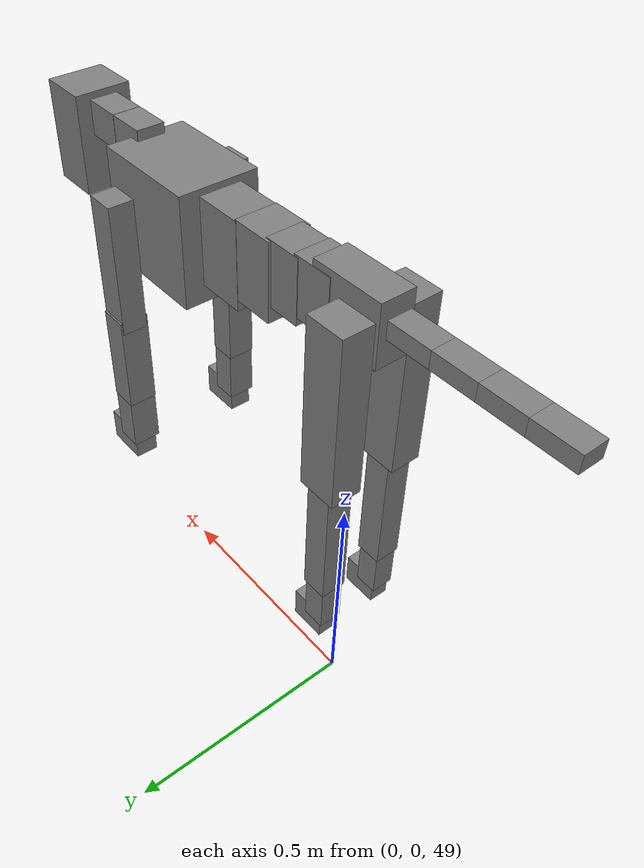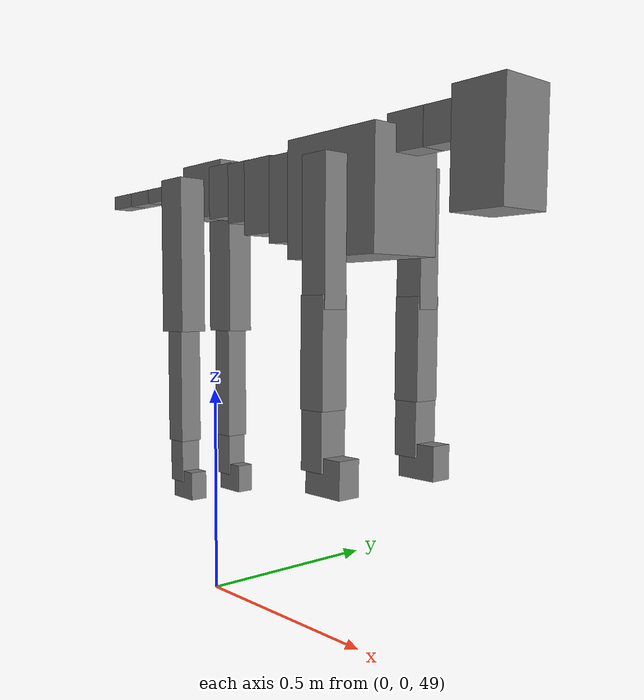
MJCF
<mujoco model="dog">

    <default>
        <joint armature="0.02" stiffness="1" damping="0.2" limited="true"/>
        <geom condim="3" friction="1 0.05 0.05" margin="0.01"/>
        <motor ctrllimited="true" ctrlrange="-1.0 1.0" forcelimited="true" gear="50"/>
    </default>

    <compiler inertiafromgeom="true" angle="radian"/>

    <option timestep="0.016" iterations="50" tolerance="1e-10" solver="Newton" jacobian="dense" cone="pyramidal"/>

    <size nconmax="20000" njmax="60000" nstack="5000000"/>
    <visual>
        <map force="0.1" zfar="30"/>
        <rgba haze="0.15 0.25 0.35 1"/>
        <quality shadowsize="2048"/>
        <global offwidth="800" offheight="800"/>
    </visual>

    <asset>
        <texture type="skybox" builtin="gradient" rgb1="0.3 0.5 0.7" rgb2="0 0 0" width="512" height="512"/>
        <texture name="texplane" type="2d" builtin="checker" rgb1=".2 .3 .4" rgb2=".1 0.15 0.2" width="512" height="512"
                 mark="cross" markrgb=".8 .8 .8"/>
        <texture name="texgeom" type="cube" builtin="flat" mark="cross" width="127" height="1278" rgb1="0.8 0.6 0.4"
                 rgb2="0.8 0.6 0.4" markrgb="1 1 1" random="0.01"/>

        <material name="matplane" reflectance="0.3" texture="texplane" texrepeat="1 1" texuniform="true"/>
        <material name="matgeom" texture="texgeom" texuniform="true" rgba="0.8 0.6 .4 1"/>
    </asset>

    <worldbody>
        <geom name="floor" pos="0 0 0" size="0 0 .25" type="plane" material="matplane" condim="3"/>

        <light directional="false" diffuse=".2 .2 .2" specular="0 0 0" pos="0 0 5" dir="0 0 -1" castshadow="false"/>
        <light mode="targetbodycom" target="torso" directional="false" diffuse=".8 .8 .8" specular="0.3 0.3 0.3"
               pos="0 0 4.0" dir="0 0 -1"/>

        <body name="root" pos="0 0 50">
            <freejoint name="root_1"/>
            <geom type="box" pos="0 0 -0.02" size="0.0774  0.0358  0.063" density="2030"/>

            <body name="spine1" pos="0.054 0 0">
                <joint name="spine1_y" axis="0 1 0" range="0 0.7" limited="true"/>
                <geom type="box" pos="0.02375 0 -0.03" size="0.04375  0.0375  0.05985" density="2030"/>

                <body name="spine2" pos="0.0612 0 0">
                    <joint name="spine2_y" axis="0 1 0" range="-0.15 0.15" limited="true"/>
                    <geom type="box" pos="0.03555  0  -0.04" size="0.04055  0.039  0.06615" density="2030"/>

                    <body name="spine3" pos="0.0730 0 0">
                        <joint name="spine3_y" axis="0 1 0" range="-0.15 0.15" limited="true"/>
                        <geom type="box" pos="0.03555  0  -0.057" size="0.04555  0.0445  0.081" density="2030"/>

                        <body name="spine4" pos="0.0780 0 0">
                            <joint name="spine4_y" axis="0 1 0" range="-0.15 0.15" limited="true"/>
                            <geom type="box" pos="0.05265  0  -0.07" size="0.05265  0.045  0.09135" density="2030"/>

                            <body name="torso" pos="0.1082 0 0">
                                <joint name="torso_y" axis="0 1 0" range="-0.15 0.15" limited="true"/>
                                <geom type="box" pos="0.11925  0  -0.085" size="0.11925  0.085  0.11745"
                                      density="2030"/>

                                <body name="neck1" pos="0.2160  0   0.0180">
                                    <joint name="neck1_y" axis="0 1 0" range="-1.2  -1" limited="true"/>
                                    <geom type="box" pos="0.0423  0  0" size="0.0423  0.03  0.036" density="2325"/>

                                    <body name="neck2" pos="0.0853  0  0">
                                        <joint name="neck2_y" axis="0 1 0" range="0.1  0" limited="true"/>
                                        <geom type="box" pos="0.0423  0  0" size="0.0423  0.03  0.036" density="2325"/>

                                        <body name="head" pos="0.0853  0  0">
                                            <joint name="head_y" axis="0 1 0" range="-0.3  -0.2" limited="true"/>
                                            <geom type="box" pos="0.0531  0  -0.055" size="0.0531  0.06  0.1044"
                                                  density="4030"/>

                                        </body>
                                    </body>
                                </body>

                                <body name="front_shoulder" pos="0.156  0   -0.0480">
                                    <joint name="front_shoulder_y" axis="0 1 0" range="-1 1.5" limited="true"/>
                                    <geom type="box" pos="0 0.13 -0.1142" size="0.0312  0.0267  0.1409" density="1158"/>
                                    <geom type="box" pos="0 -0.13 -0.1142" size="0.0312  0.0267  0.1409"
                                          density="1158"/>

                                    <body name="front_elbow" pos="0  0  -0.2284">
                                        <joint name="front_elbow_y" axis="0 1 0" range="-2 0" limited="true"/>
                                        <geom type="box" pos="0 0.13 -0.1064" size="0.0297  0.0304  0.1064"
                                              density="1081"/>
                                        <geom type="box" pos="0 -0.13 -0.1064" size="0.0297  0.0304  0.1064"
                                              density="1081"/>

                                        <body name="front_wrist" pos="0  0  -0.2128">
                                            <joint name="front_wrist_y" axis="0 1 0" range="-0.2 0" limited="true"/>
                                            <geom type="box" pos="0 0.13 -0.0508" size="0.0273  0.0303  0.0639"
                                                  density="1664"/>
                                            <geom type="box" pos="0 -0.13 -0.0508" size="0.0273  0.0303  0.0639"
                                                  density="1664"/>

                                            <body name="front_finger_end" pos="0  0  -0.1015">
                                                <joint name="front_finger_y" axis="0 1 0" range="-0.4 1"
                                                       limited="true"/>
                                                <geom type="box" pos="0.0248  0.13  -0.0211"
                                                      size="0.0454  0.0248  0.0361" density="1515"/>
                                                <geom type="box" pos="0.0248  -0.13  -0.0211"
                                                      size="0.0454  0.0248  0.0361" density="1515"/>

                                            </body>

                                        </body>
                                    </body>
                                </body>

                            </body>
                        </body>
                    </body>
                </body>
            </body>

            <body name="back_hip" pos="-0.03 0 -0.018">
                <joint name="back_hip_y" axis="0 1 0" range="-1.5 0.3" limited="true"/>
                <geom type="box" pos="0 0.07 -0.1570" size="0.0416  0.0326  0.1798" density="1154"/>
                <geom type="box" pos="0 -0.07 -0.1570" size="0.0416  0.0326  0.1798" density="1154"/>

                <body name="back_knee" pos="0  0  -0.3140">
                    <joint name="back_knee_y" axis="0 1 0" range="0 2.8" limited="true"/>
                    <geom type="box" pos="0 0.07 -0.1361" size="0.0273  0.0269  0.1516" density="1227"/>
                    <geom type="box" pos="0 -0.07 -0.1361" size="0.0273  0.0269  0.1516" density="1227"/>

                    <body name="back_ankle" pos="0  0  -0.2722">
                        <joint name="back_ankle_y" axis="0 1 0" range="-2.2 0" limited="true"/>
                        <geom type="box" pos="0 0.07 -0.0515" size="0.0240  0.0240  0.0628" density="1284"/>
                        <geom type="box" pos="0 -0.07 -0.0515" size="0.0240  0.0240  0.0628" density="1284"/>

                        <body name="back_toe_end" pos="0  0  -0.1030">
                            <joint name="back_toe_y" axis="0 1 0" range="-0.4 1" limited="true"/>
                            <geom type="box" pos="0.0206  0.07  -0.0182" size="0.0379  0.0206  0.0332" density="1515"/>
                            <geom type="box" pos="0.0206  -0.07  -0.0182" size="0.0379  0.0206  0.0332" density="1515"/>

                        </body>
                    </body>
                </body>
            </body>

            <body name="tail1" pos="-0.074 0 -0.006">
                <joint name="tail1_y" axis="0 1 0" range="-0.2 0.2" limited="true"/>
                <geom type="box" pos="-0.0536  0  0" size="0.045  0.025  0.0175" density="1587"/>

                <body name="tail2" pos="-0.09 0 0">
                    <joint name="tail2_y" axis="0 1 0" range="-0.2 0.2" limited="true"/>
                    <geom type="box" pos="-0.0536  0  0" size="0.045  0.025  0.0175" density="1587"/>

                    <body name="tail3" pos="-0.09 0 0">
                        <joint name="tail3_y" axis="0 1 0" range="-0.2 0.2" limited="true"/>
                        <geom type="box" pos="-0.0536  0  0" size="0.045  0.025  0.0175" density="1587"/>

                        <body name="tail4" pos="-0.09 0 0">
                            <joint name="tail4_y" axis="0 1 0" range="-0.2 0.2" limited="true"/>
                            <geom type="box" pos="-0.0536  0  0" size="0.045  0.025  0.0175" density="1587"/>

                        </body>
                    </body>
                </body>
            </body>
        </body>
    </worldbody>

    <actuator>
        <motor joint="spine1_y" forcerange="-150 150     "/>
        <motor joint="spine2_y" forcerange="-150 150     "/>
        <motor joint="spine3_y" forcerange="-150 150     "/>
        <motor joint="spine4_y" forcerange="-150 150     "/>
        <motor joint="torso_y" forcerange="-150 150     "/>
        <motor joint="neck1_y" forcerange="-100 100       "/>
        <motor joint="neck2_y" forcerange="-100 100       "/>
        <motor joint="head_y" forcerange="-150 150       "/>
        <motor joint="front_shoulder_y" forcerange="-116.59 161.17"/>
        <motor joint="front_elbow_y" forcerange="-140.75 180.28"/>
        <motor joint="front_wrist_y" forcerange="-120.88 121.41"/>
        <motor joint="front_finger_y" forcerange="-23.35 68.69"/>
        <motor joint="back_hip_y" forcerange="-345.37 289.84"/>
        <motor joint="back_knee_y" forcerange="-316.79 275.21"/>
        <motor joint="back_angle_y" forcerange="-141.25 143.55"/>
        <motor joint="back_toe_y" forcerange="-50.25 34.93"/>
        <motor joint="tail1_y" forcerange="-50 50     "/>
        <motor joint="tail2_y" forcerange="-50 50     "/>
        <motor joint="tail3_y" forcerange="-50 50     "/>
        <motor joint="tail4_y" forcerange="-50 50     "/>
    </actuator>
</mujoco>
